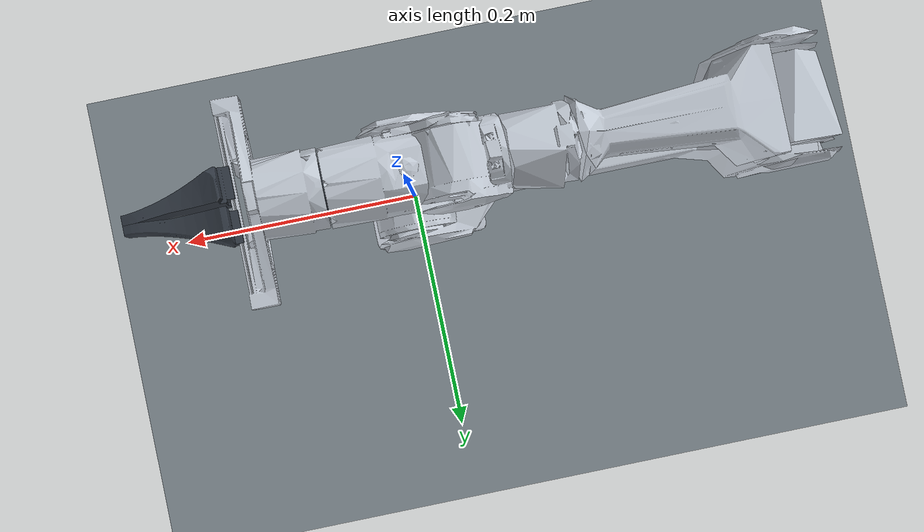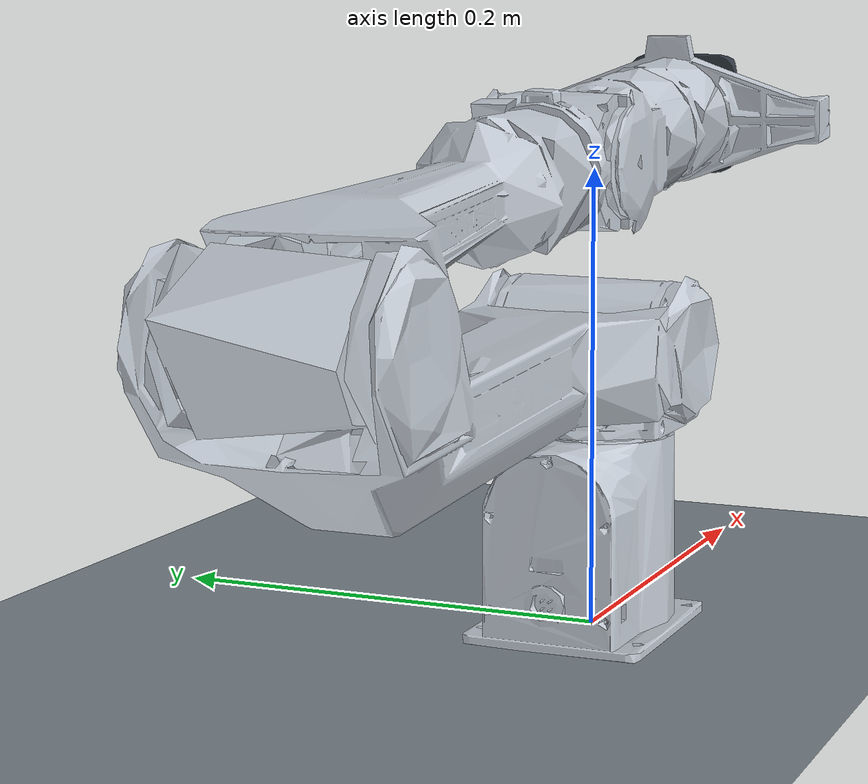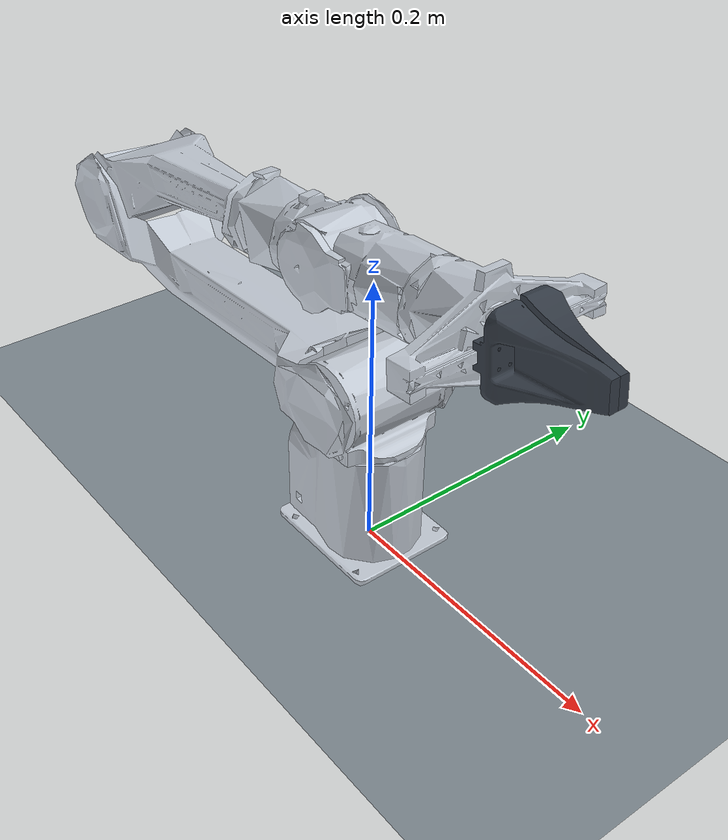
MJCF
<mujoco model="piper_m1_current_urdf">
  <compiler angle="radian" meshdir="/home/robot/Desktop/robot pick place/src/robot_pick_place_agent/assets/piper/meshes" autolimits="true" inertiafromgeom="false" />
  <asset>
    <mesh name="base_link" file="base_link.STL" />
    <mesh name="link1" file="link1.STL" />
    <mesh name="link2" file="link2.STL" />
    <mesh name="link3" file="link3.STL" />
    <mesh name="link4" file="link4.STL" />
    <mesh name="link5" file="link5.STL" />
    <mesh name="link6" file="link6.STL" />
    <mesh name="gripper_base" file="gripper_base.STL" />
    <mesh name="link7" file="link7.STL" />
    <mesh name="link8" file="link8.STL" />
  </asset>
  <worldbody>
    <body name="base_link">
      <geom type="mesh" rgba="0.4 0.7 0.4 0.2" mesh="base_link" name="base_link_collision" group="3" />
      <body name="link1" pos="0 0 0.123" quat="1 0 0 0">
        <joint name="joint1" pos="0 0 0" axis="0 0 1" limited="true" range="-2.618 2.618" damping="0.05" armature="0.005" />
        <geom type="mesh" rgba="0.4 0.7 0.4 0.2" mesh="link1" name="link1_collision" group="3" />
        <body name="link2" pos="0 0 0" quat="0.0480084366585724 -0.0480134430131485 -0.705476100912518 -0.705473862266274">
          <joint name="joint2" pos="0 0 0" axis="0 0 1" limited="true" range="0 3.14" damping="0.05" armature="0.005" />
          <geom type="mesh" rgba="0.4 0.7 0.4 0.2" mesh="link2" name="link2_collision" group="3" />
          <body name="link3" pos="0.28503 0 0" quat="0.623996220379733 0 0 -0.781427358717244">
            <joint name="joint3" pos="0 0 0" axis="0 0 1" limited="true" range="-2.967 0" damping="0.05" armature="0.005" />
            <geom type="mesh" rgba="0.4 0.7 0.4 0.2" mesh="link3" name="link3_collision" group="3" />
            <body name="link4" pos="-0.021984 -0.25075 0" quat="0.707105482511236 0.707108079859474 0 0">
              <joint name="joint4" pos="0 0 0" axis="0 0 1" limited="true" range="-1.745 1.745" damping="0.05" armature="0.005" />
              <geom type="mesh" rgba="0.4 0.7 0.4 0.2" mesh="link4" name="link4_collision" group="3" />
              <body name="link5" pos="0 0 0" quat="0.707105482511236 -0.707108079859474 0 0">
                <joint name="joint5" pos="0 0 0" axis="0 0 1" limited="true" range="-1.22 1.22" damping="0.05" armature="0.005" />
                <geom type="mesh" rgba="0.4 0.7 0.4 0.2" mesh="link5" name="link5_collision" group="3" />
                <body name="link6" pos="8.8259E-05 -0.091 0" quat="0.707105482511236 0.707108079859474 0 0">
                  <joint name="joint6" pos="0 0 0" axis="0 0 1" limited="true" range="-2.0944 2.0944" damping="0.05" armature="0.005" />
                  <geom type="mesh" rgba="0.4 0.7 0.4 0.2" mesh="link6" name="link6_collision" group="3" />
                  <body name="gripper_base" pos="0 0 0" quat="1 0 0 0">
                    <geom type="mesh" rgba="0.4 0.7 0.4 0.2" mesh="gripper_base" name="gripper_base_collision" group="3" />
                    <body name="link7" pos="0 0 0.1358" quat="0.707105482511236 0.707108079859474 0 0">
                      <joint name="joint7" pos="0 0 0" axis="0 0 1" type="slide" limited="true" range="0 0.035" damping="0.05" armature="0.005" />
                      <geom type="mesh" rgba="0.4 0.7 0.4 0.2" mesh="link7" name="link7_collision" group="3" />
                      <inertial pos="0.00065123185041968 -0.0491929869131989 0.00972258769184025" mass="0.025" fullinertia="0.00007371 0.00000781 0.0000747 -0.00000113 0.00000021 -0.00001372" />
                      <geom type="mesh" rgba="0.20 0.23 0.27 1" mesh="link7" name="link7_visual" group="1" contype="0" conaffinity="0" />
                    </body>
                    <body name="link8" pos="0 0 0.1358" quat="-2.59734346696461e-06 -2.59735300755741e-06 -0.707108079854703 -0.707105482506466">
                      <joint name="joint8" pos="0 0 0" axis="0 0 -1" type="slide" limited="true" range="-0.035 0" damping="0.05" armature="0.005" />
                      <geom type="mesh" rgba="0.4 0.7 0.4 0.2" mesh="link8" name="link8_collision" group="3" />
                      <inertial pos="0.000651231850419722 -0.0491929869131991 0.00972258769184024" mass="0.025" fullinertia="0.00007371 0.00000781 0.0000747 -0.00000113 0.00000021 -0.00001372" />
                      <geom type="mesh" rgba="0.20 0.23 0.27 1" mesh="link8" name="link8_visual" group="1" contype="0" conaffinity="0" />
                    </body>
                    <inertial pos="-0.000183807162235591 8.05033155577911E-05 0.0321436689908876" mass="0.45" fullinertia="0.00092934 0.00071447 0.00039442 0.00000034 -0.00000738 0.00000005" />
                    <geom type="mesh" rgba="0.78 0.81 0.85 1" mesh="gripper_base" name="gripper_base_visual" group="1" contype="0" conaffinity="0" />
                  </body>
                  <inertial pos="-0.00003 0.00006 0.04618" mass="0.007" fullinertia="0.00152112 0.00138626 0.00031152 0.00000202 0.00000261 0.00000002" />
                  <geom type="mesh" rgba="0.20 0.23 0.27 1" mesh="link6" name="link6_visual" group="1" contype="0" conaffinity="0" />
                  <site name="tcp" pos="0 0 0.125" size="0.004" rgba="0.9 0.2 0.1 1" group="2" />
                </body>
                <inertial pos="0.00018 -0.06104 -0.00227" mass="0.383" fullinertia="0.00172318 0.00017936 0.00171172 0.00000259 0.00000010 0.00000990" />
                <geom type="mesh" rgba="0.78 0.81 0.85 1" mesh="link5" name="link5_visual" group="1" contype="0" conaffinity="0" />
              </body>
              <inertial pos="0.00013 -0.00076 -0.00394" mass="0.38" fullinertia="0.00017844 0.00018914 0.00014613 0.00000062 0.00000067 0.00000408" />
              <geom type="mesh" rgba="0.78 0.81 0.85 1" mesh="link4" name="link4_visual" group="1" contype="0" conaffinity="0" />
            </body>
            <inertial pos="-0.01999 -0.14808 -0.00053" mass="0.5" fullinertia="0.01347608 0.00046377 0.01363321 0.00161034 0.00000066 0.00000162" />
            <geom type="mesh" rgba="0.78 0.81 0.85 1" mesh="link3" name="link3_visual" group="1" contype="0" conaffinity="0" />
          </body>
          <inertial pos="0.21852 -0.00861 0.00126" mass="1.16" fullinertia="0.00111915 0.06763251 0.067559 0.00182916 0.00019233 0.00000767" />
          <geom type="mesh" rgba="0.78 0.81 0.85 1" mesh="link2" name="link2_visual" group="1" contype="0" conaffinity="0" />
        </body>
        <inertial pos="0.00032 -0.00041 -0.00348" mass="0.71" fullinertia="0.00050027 0.00040879 0.00045802 0.00000078 0.00000626 0.00000462" />
        <geom type="mesh" rgba="0.78 0.81 0.85 1" mesh="link1" name="link1_visual" group="1" contype="0" conaffinity="0" />
      </body>
      <inertial pos="-0.00473641164191482 2.56829134630247E-05 0.041451518036016" mass="1.02" fullinertia="0.00267433 0.00282612 0.00089624 -0.00000073 -0.00017389 0.0000004" />
      <geom type="mesh" rgba="0.78 0.81 0.85 1" mesh="base_link" name="base_link_visual" group="1" contype="0" conaffinity="0" />
    </body>
    <geom name="table" type="plane" pos="0 0 -0.001" size="1 1 0.02" rgba="0.50 0.54 0.57 1" />
    <light pos="0.3 -0.4 1.8" dir="-0.1 0.1 -1" diffuse="0.8 0.8 0.8" />
    <light pos="-0.8 0.3 1.0" dir="0.5 0 -1" diffuse="0.5 0.5 0.5" castshadow="false" />
  </worldbody>
  <actuator>
    <motor name="joint1_motor" joint="joint1" gear="1" ctrllimited="true" ctrlrange="-25 25" />
    <motor name="joint2_motor" joint="joint2" gear="1" ctrllimited="true" ctrlrange="-25 25" />
    <motor name="joint3_motor" joint="joint3" gear="1" ctrllimited="true" ctrlrange="-18 18" />
    <motor name="joint4_motor" joint="joint4" gear="1" ctrllimited="true" ctrlrange="-8 8" />
    <motor name="joint5_motor" joint="joint5" gear="1" ctrllimited="true" ctrlrange="-8 8" />
    <motor name="joint6_motor" joint="joint6" gear="1" ctrllimited="true" ctrlrange="-5 5" />
    <motor name="joint7_motor" joint="joint7" gear="1" ctrllimited="true" ctrlrange="-10 10" />
    <motor name="joint8_motor" joint="joint8" gear="1" ctrllimited="true" ctrlrange="-10 10" />
  </actuator>
  <option timestep="0.001" gravity="0 0 -9.81" integrator="implicitfast" />
  <visual>
    <global offwidth="1280" offheight="960" />
    <headlight ambient="0.5 0.5 0.5" diffuse="0.6 0.6 0.6" />
  </visual>
  <default>
    <geom friction="0.7 0.005 0.0001" solref="0.006 1" solimp="0.95 0.99 0.001" />
  </default>
  <contact>
    <exclude body1="base_link" body2="link1" />
  </contact>
</mujoco>
